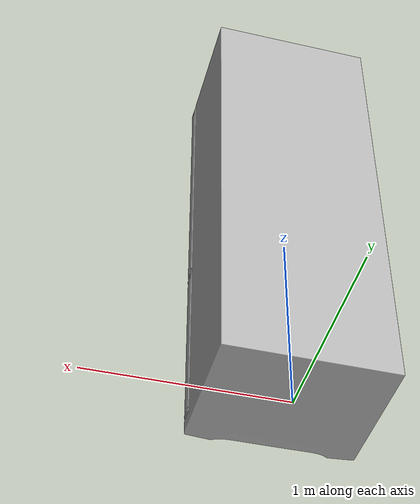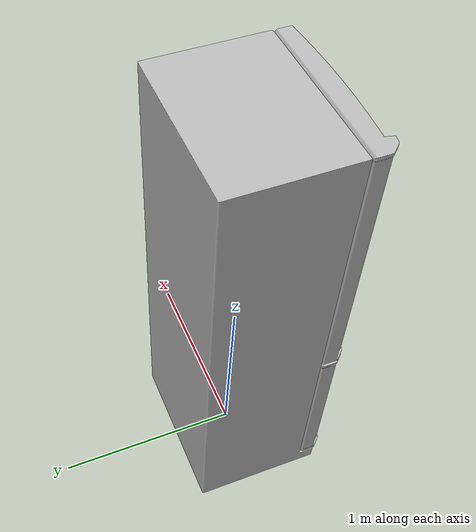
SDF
<?xml version="1.0"?>
<sdf version="1.5">
    <model name="Refrigerator">
        <static>true</static>

        <link name="Refrigerator">
            <pose>0 0 0 0 0 0</pose>
            <static>true</static>
            <visual name="visual">
                <geometry>
                        <mesh>
                        <uri>model://refrigerator/refrigerator.stl</uri>
                        <scale>0.03 0.03 0.03</scale>
                        </mesh>
                </geometry>
            </visual>
        </link>
    </model>
 </sdf>
